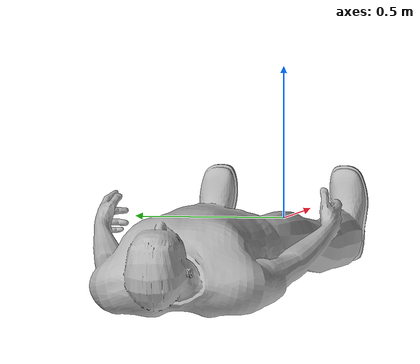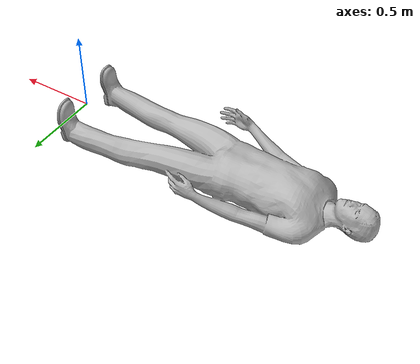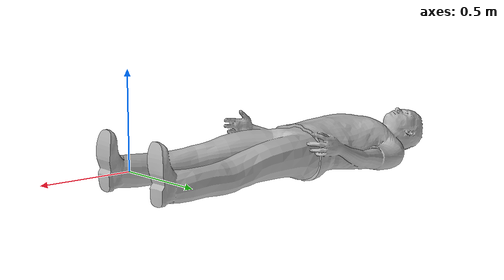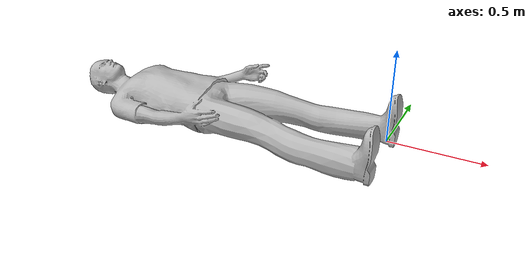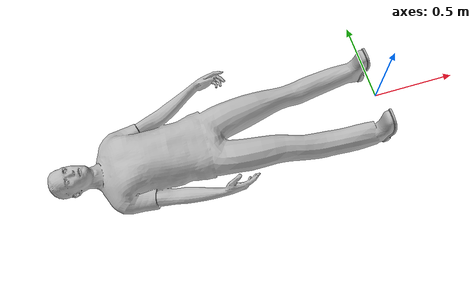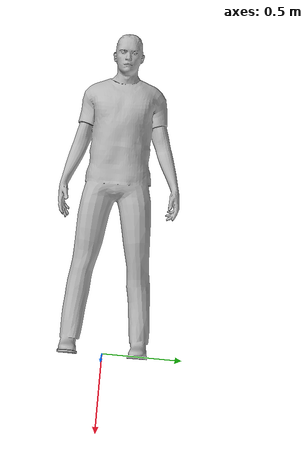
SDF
<?xml version="1.0"?>
<sdf version="1.5">
  <model name="subject0">
    <link name="link">
    <inertial>
        <pose>0 -0.1 0.95 0 0 0</pose>
        <mass>80.0</mass>
        <inertia> <!-- inertias are tricky to compute -->
          <!-- http://gazebosim.org/tutorials?tut=inertia&cat=build_robot -->
          <ixx>24.88</ixx>       <!-- for a box: ixx = 0.083 * mass * (y*y + z*z) -->
          <ixy>0.0</ixy>         <!-- for a box: ixy = 0 -->
          <ixz>0.0</ixz>         <!-- for a box: ixz = 0 -->
          <iyy>25.73</iyy>       <!-- for a box: iyy = 0.083 * mass * (x*x + z*z) -->
          <iyz>0.0</iyz>         <!-- for a box: iyz = 0 -->
          <izz>2.48</izz>       <!-- for a box: izz = 0.083 * mass * (x*x + y*y) -->
        </inertia>
      </inertial>

      <collision name="bottom">
        <pose>0 0 0.01 0 0 1.57</pose>
        <geometry>
          <box>
            <size>0.5 0.35 0.02</size>
          </box>
        </geometry>
      </collision>

      <collision name="human">
        <pose>0 0 0.02 0 0 1.57</pose>
        <geometry>
          <mesh>
            <uri>model://subject0/meshes/subject0.dae</uri>
          </mesh>
        </geometry>
      </collision>

    <visual name="visual">
        <pose>0 0 0.02 0 0 1.57</pose>
        <geometry>
          <mesh>
            <uri>model://subject0/meshes/subject0.dae</uri>
          </mesh>
        </geometry>
      </visual>
    </link>
  </model>
</sdf>
